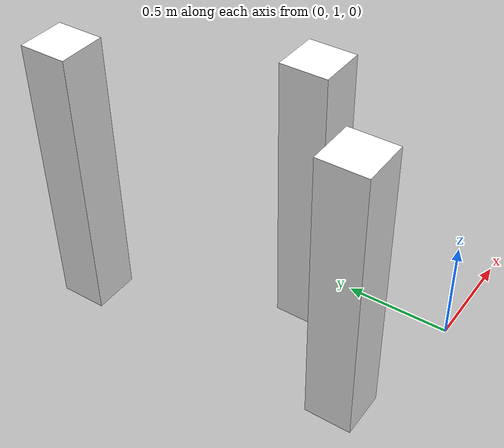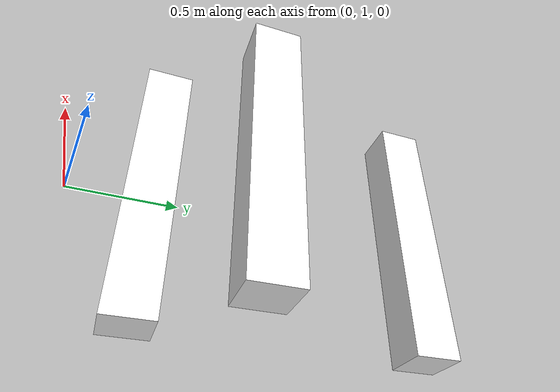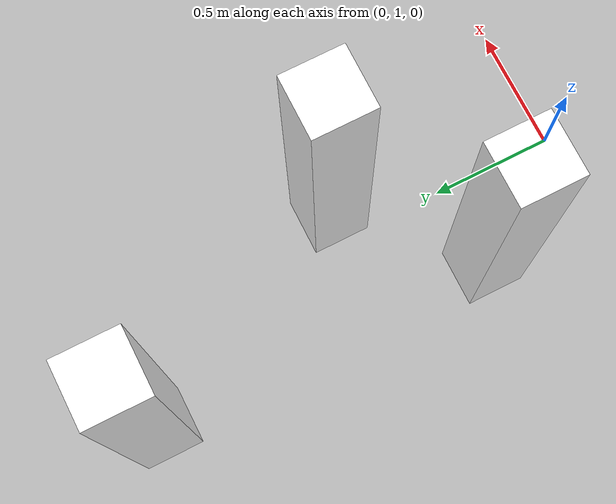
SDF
<?xml version='1.0' encoding='UTF-8'?>
<sdf version="1.10">
  <model name="cluttered_obstacles_hardware">

    <static>true</static>

    <link name="obstacle1">
      <pose>-0.2667 1.373 0.262 0 0 0.0</pose>
      <collision name="obstacle1_collision"><geometry><box><size>0.254 0.254 1.524</size></box></geometry></collision>
      <visual name="obstacle1_visual"><geometry><box><size>0.254 0.254 1.524</size></box></geometry>
        <material><diffuse>1 1 1 1</diffuse><pbr><metal><albedo_map>/home/harshmodi/PX4-Autopilot/Tools/simulation/gz/models/realistic_room/materials/textures/brickwall.png</albedo_map></metal></pbr></material>
      </visual>
    </link>

    <link name="obstacle2">
      <pose>0.2413 1.8683 0.262 0 0 0.0</pose>
      <collision name="obstacle2_collision"><geometry><box><size>0.254 0.254 1.524</size></box></geometry></collision>
      <visual name="obstacle2_visual"><geometry><box><size>0.254 0.254 1.524</size></box></geometry>
        <material><diffuse>1 1 1 1</diffuse><pbr><metal><albedo_map>/home/harshmodi/PX4-Autopilot/Tools/simulation/gz/models/realistic_room/materials/textures/brickall.png</albedo_map></metal></pbr></material>
      </visual>
    </link>

    <link name="obstacle3">
      <pose>-0.2794 2.9224 0.262 0 0 0</pose>
      <collision name="obstacle3_collision"><geometry><box><size>0.254 0.254 1.524</size></box></geometry></collision>
      <visual name="obstacle3_visual"><geometry><box><size>0.254 0.254 1.524</size></box></geometry>
        <material><diffuse>1 1 1 1</diffuse><pbr><metal><albedo_map>/home/harshmodi/PX4-Autopilot/Tools/simulation/gz/models/realistic_room/materials/textures/brickwall.png</albedo_map></metal></pbr></material>
      </visual>
    </link>

  </model>
</sdf>
